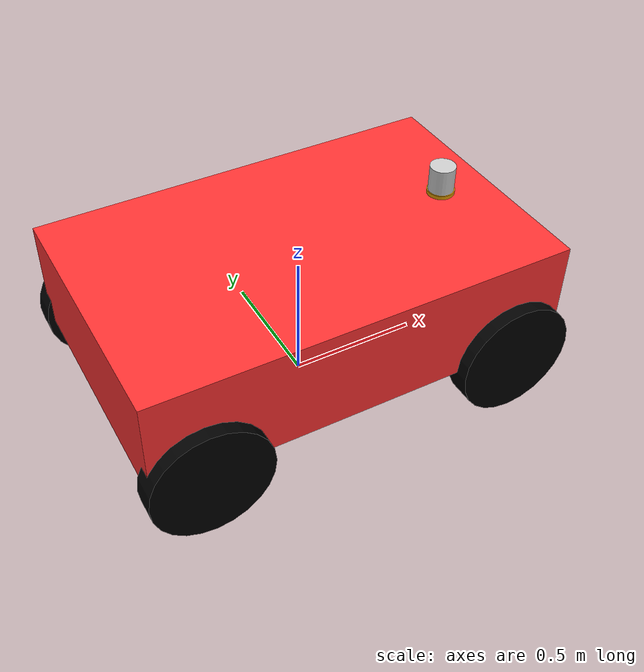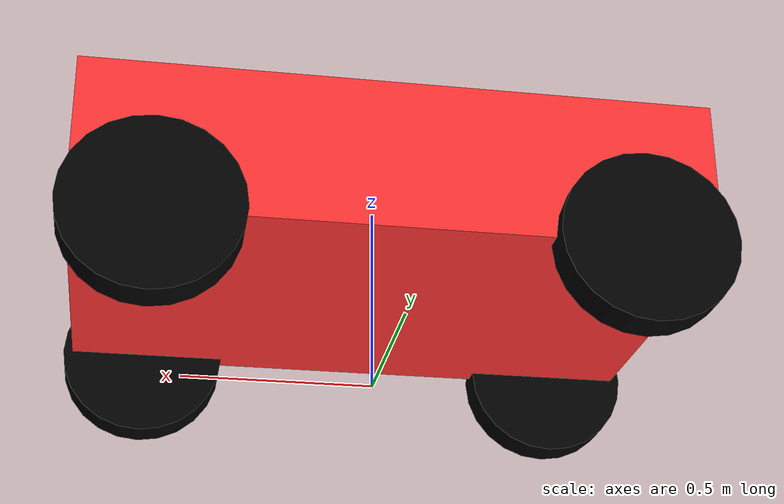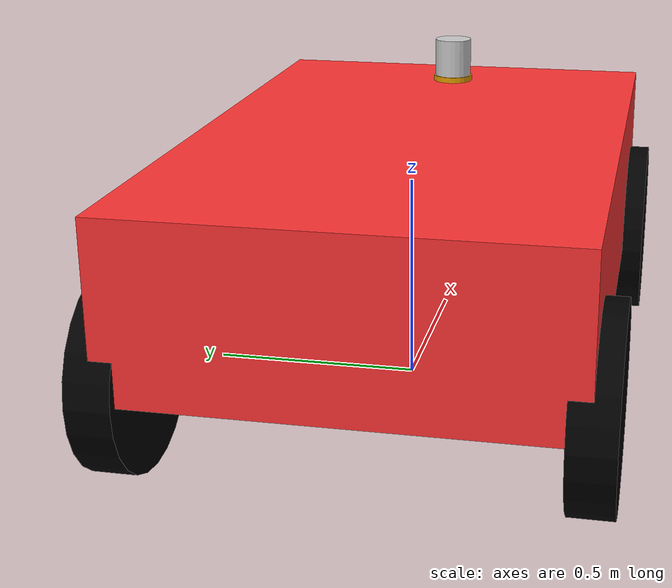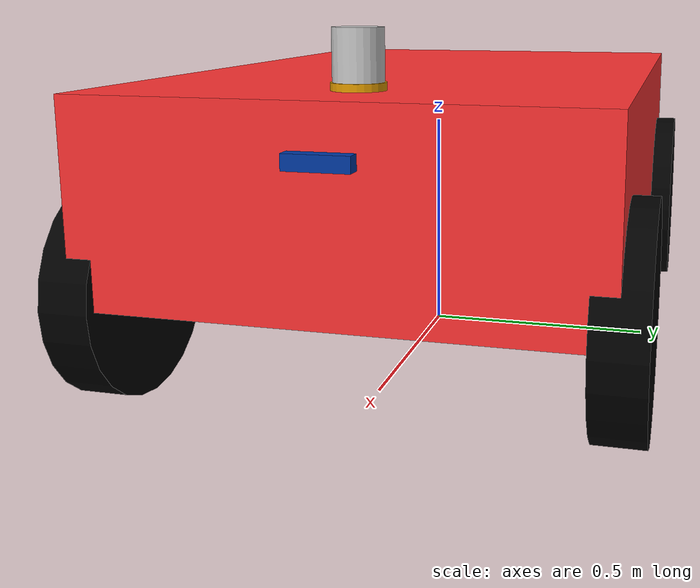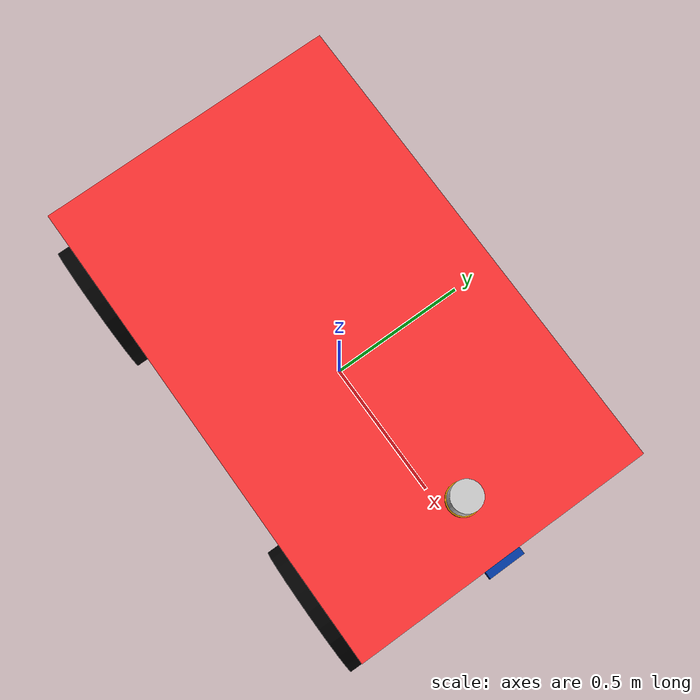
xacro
<?xml version="1.0"?>
<!-- 4 Wheel Robot with front steering and rear drive -->
<robot xmlns:xacro="http://www.ros.org/wiki/xacro" name="delicar_robot">

  <xacro:arg name="prefix" default="" />

  <xacro:arg name="use_sim" default="true" />

  <xacro:include filename="$(find delicar_description)/urdf/robot/delicar_sim_description.urdf.xacro" />
  <xacro:include filename="$(find delicar_description)/urdf/sensors/depth_camera.urdf.xacro" />
  <xacro:include filename="$(find delicar_description)/urdf/sensors/imu.urdf.xacro" />
  <xacro:include filename="$(find delicar_description)/urdf/sensors/laser_3d.urdf.xacro" />
  <xacro:include filename="$(find delicar_description)/urdf/controllers/delicar_controllers.xacro" />
  <xacro:include filename="$(find delicar_description)/urdf/controllers/gazebo_controllers.xacro" />

  <!-- Import delicar description -->
  <xacro:delicar prefix="$(arg prefix)" />

  <!-- Import camera -->
  <xacro:depth_camera prefix="$(arg prefix)" />

  <!-- Import imu -->
  <xacro:imu prefix="$(arg prefix)"/>

  <!-- Import 3d lidar -->
  <xacro:laser_3d
    prefix="$(arg prefix)"
    update_rate="10"
    ray_count="440"
    line_count="16"
    hor_min_angle="-3.14159"
    hor_max_angle="3.14159"
    ver_min_angle="-0.2617"
    ver_max_angle="0.2617"
    min_range="0.3"
    max_range="130.0"
    frame_id="laser_3d"
    topic_name="lidar/points_raw"
  />

  <!-- Import controllers -->
  <xacro:gazebo_ros2_control name="GazeboSystem" prefix="$(arg prefix)" />

</robot>

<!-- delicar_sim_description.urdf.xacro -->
<robot xmlns:xacro="http://www.ros.org/wiki/xacro">

  <xacro:macro name="delicar" params="prefix">

    <!-- Constants for robot dimensions -->
    <xacro:property name="PI" value="3.1415926535897931" />
    <xacro:property name="base_mass" value="50.0" />
    <xacro:property name="base_width" value="1" />
    <xacro:property name="base_length" value="1.6" />
    <xacro:property name="base_height" value="0.4" />
    <xacro:property name="wheelbase" value="1.2" />
    <xacro:property name="wheeltrack" value="1.0" />
    <xacro:property name="wheel_mass" value="5" />
    <xacro:property name="wheel_len" value="0.1" />
    <xacro:property name="wheel_radius" value="0.225" />

    <!-- Base Link -->
    <link name="${prefix}base_link" />

    <!-- Chassis -->
    <link name="${prefix}chassis_link">

      <visual>
        <origin xyz="0 0 0" rpy="0 0 0" />
        <geometry>
          <box size="${base_length} ${base_width} ${base_height}" />
        </geometry>
        <material name="red">
          <color rgba="1.0 0.2 0.2 1.0" />
        </material>
      </visual>

      <inertial>
        <origin xyz="0 0 0" rpy="0 0 0" />
        <mass value="${base_mass}" />
        <inertia
          ixx="${base_mass / 12.0 * (base_width*base_width + base_height*base_height)}"
          ixy="0.0"
          ixz="0.0"
          iyy="${base_mass / 12.0 * (base_width*base_width + base_height*base_height)}"
          iyz="0.0"
          izz="${base_mass / 12.0 * (base_width*base_width + base_height*base_height)}" />
      </inertial>

    </link>

    <!-- Fix color bug in gazebo -->
    <gazebo reference="${prefix}chassis_link">
      <visual>
        <material>
          <ambient>1.0 0.2 0.2 1.0</ambient>
          <diffuse>1.0 0.2 0.2 1.0</diffuse>
          <specular>1.0 1.0 1.0 1.0</specular>
          <emissive>0.2 0.0 0.0 1.0</emissive>
        </material>
      </visual>
    </gazebo>

    <!-- Chassis Joint -->
    <joint name="${prefix}chassis_joint" type="fixed">
      <parent link="${prefix}base_link" />
      <child link="${prefix}chassis_link" />
      <origin xyz="0 0 ${wheel_radius + base_height/2}" rpy="0 0 0" />
    </joint>

    <!-- Rear wheels -->

    <!-- rear left wheel -->
    <link name="${prefix}rear_left_wheel">
      <visual>
        <origin xyz="0 0 0" rpy="0 0 0" />
        <geometry>
          <cylinder length="${wheel_len}" radius="${wheel_radius}" />
        </geometry>
        <material name="black">
          <color rgba="0.0 0.0 0.0 1.0" />
        </material>
      </visual>

      <collision>
        <origin xyz="0 0 0" rpy="0 0 0" />
        <geometry>
          <cylinder length="${wheel_len}" radius="${wheel_radius}" />
        </geometry>
      </collision>

      <inertial>
        <origin xyz="0 0 0" rpy="0 0 0" />
        <mass value="${wheel_mass}" />
        <inertia
          ixx="${wheel_mass / 12.0 * (3 * wheel_radius*wheel_radius + wheel_len*wheel_len)}"
          ixy="0.0"
          ixz="0.0"
          iyy="${wheel_mass / 12.0 * (3 * wheel_radius*wheel_radius + wheel_len*wheel_len)}"
          iyz="0.0"
          izz="${wheel_mass / 2.0 * wheel_radius*wheel_radius}" />
      </inertial>
    </link>

    <joint name="${prefix}rear_left_wheel_joint" type="continuous">
      <parent link="${prefix}chassis_link" />
      <child link="${prefix}rear_left_wheel" />
      <origin xyz="-${wheelbase/2} ${wheeltrack/2} -${base_height/2}" rpy="-1.57 0 0" />
      <axis xyz="0 0 1" />
      <limit effort="1000.0" velocity="100" />
    </joint>

    <gazebo reference="${prefix}rear_left_wheel">
      <visual>
        <material>
          <ambient>0.0 0.0 0.0 1.0</ambient>
          <diffuse>0.0 0.0 0.0 1.0</diffuse>
          <specular>0.5 0.5 0.5 1.0</specular>
          <emissive>0.0 0.0 0.0 1.0</emissive>
        </material>
      </visual>
    </gazebo>

    <!-- rear right wheel -->

    <link name="${prefix}rear_right_wheel">

      <visual>
        <origin xyz="0 0 0" rpy="0 0 0" />
        <geometry>
          <cylinder length="${wheel_len}" radius="${wheel_radius}" />
        </geometry>
        <material name="black">
          <color rgba="0.0 0.0 0.0 1.0" />
        </material>
      </visual>

      <collision>
        <origin xyz="0 0 0" rpy="0 0 0" />
        <geometry>
          <cylinder length="${wheel_len}" radius="${wheel_radius}" />
        </geometry>
      </collision>

      <inertial>
        <origin xyz="0 0 0" rpy="0 0 0" />
        <mass value="${wheel_mass}" />
        <inertia
          ixx="${wheel_mass / 12.0 * (3 * wheel_radius*wheel_radius + wheel_len*wheel_len)}"
          ixy="0.0"
          ixz="0.0"
          iyy="${wheel_mass / 12.0 * (3 * wheel_radius*wheel_radius + wheel_len*wheel_len)}"
          iyz="0.0"
          izz="${wheel_mass / 2.0 * wheel_radius*wheel_radius}" />
      </inertial>

    </link>

    <joint name="${prefix}rear_right_wheel_joint" type="continuous">
      <parent link="${prefix}chassis_link" />
      <child link="${prefix}rear_right_wheel" />
      <origin xyz="-${wheelbase/2} -${wheeltrack/2} -${base_height/2}" rpy="-1.57 0 0" />
      <axis xyz="0 0 1" />
      <limit effort="1000.0" velocity="100" />
    </joint>

    <gazebo reference="${prefix}rear_right_wheel">
      <visual>
        <material>
          <ambient>0.0 0.0 0.0 1.0</ambient>
          <diffuse>0.0 0.0 0.0 1.0</diffuse>
          <specular>0.5 0.5 0.5 1.0</specular>
          <emissive>0.0 0.0 0.0 1.0</emissive>
        </material>
      </visual>
    </gazebo>

    <!-- steering links-->

    <!-- left sterring link-->

    <link name="${prefix}left_wheel_steering">
      <inertial>
        <mass value="0.1" />
        <inertia ixx="0.001" ixy="0.0" ixz="0.0" iyy="0.001" iyz="0.0" izz="0.001" />
      </inertial>
    </link>

    <!-- left sterring joint-->

    <joint name="${prefix}left_wheel_steering_joint" type="revolute">
      <parent link="${prefix}chassis_link" />
      <child link="${prefix}left_wheel_steering" />
      <origin xyz="${wheelbase/2} -${wheeltrack/2} -${base_height/2}" rpy="${PI/2} 0 0" />
      <axis xyz="0 1 0" />
      <limit effort="1000.0" lower="-1.0471975512" upper="1.0471975512" velocity="30" />
    </joint>

    <!-- right sterring link-->

    <link name="${prefix}right_wheel_steering">
      <inertial>
        <mass value="0.1" />
        <inertia ixx="0.001" ixy="0.0" ixz="0.0" iyy="0.001" iyz="0.0" izz="0.001" />
      </inertial>
    </link>

    <!-- right sterring joint-->

    <joint name="${prefix}right_wheel_steering_joint" type="revolute">
      <parent link="${prefix}chassis_link" />
      <child link="${prefix}right_wheel_steering" />
      <origin xyz="${wheelbase/2} ${wheeltrack/2} -${base_height/2}" rpy="${PI/2} 0 0" />
      <axis xyz="0 1 0" />
      <limit effort="1000.0" lower="-1.0471975512" upper="1.0471975512" velocity="30" />
    </joint>

    <!-- front wheels -->

    <!-- front left steering -->

    <link name="${prefix}front_left_wheel">
      <collision>
        <origin xyz="0 0 0" rpy="0 0 0" />
        <geometry>
          <cylinder length="${wheel_len}" radius="${wheel_radius}" />
        </geometry>
      </collision>

      <visual>
        <origin xyz="0 0 0" rpy="0 0 0" />
        <geometry>
          <cylinder length="${wheel_len}" radius="${wheel_radius}" />
        </geometry>
        <material name="black" />
      </visual>

      <inertial>
        <origin xyz="0 0 0" rpy="0 0 0" />
        <mass value="${wheel_mass}" />
        <inertia
          ixx="${wheel_mass / 12.0 * (3 * wheel_radius*wheel_radius + wheel_len*wheel_len)}"
          ixy="0.0"
          ixz="0.0"
          iyy="${wheel_mass / 12.0 * (3 * wheel_radius*wheel_radius + wheel_len*wheel_len)}"
          iyz="0.0"
          izz="${wheel_mass / 2.0 * wheel_radius*wheel_radius}" />
      </inertial>

    </link>

    <joint name="${prefix}front_left_wheel_joint" type="continuous">
      <parent link="${prefix}left_wheel_steering" />
      <child link="${prefix}front_left_wheel" />
      <origin xyz="0 0 0" rpy="0 0 0" />
      <axis xyz="0 0 1" />
    </joint>

    <!-- front right wheel -->

    <link name="${prefix}front_right_wheel">

      <collision>
        <origin xyz="0 0 0" rpy="0 0 0" />
        <geometry>
          <cylinder length="${wheel_len}" radius="${wheel_radius}" />
        </geometry>
      </collision>

      <visual>
        <origin xyz="0 0 0" rpy="0 0 0" />
        <geometry>
          <cylinder length="${wheel_len}" radius="${wheel_radius}" />
        </geometry>
        <material name="black" />
      </visual>

      <inertial>
        <origin xyz="0 0 0" rpy="0 0 0" />
        <mass value="${wheel_mass}" />
        <inertia
          ixx="${wheel_mass / 12.0 * (3 * wheel_radius*wheel_radius + wheel_len*wheel_len)}"
          ixy="0.0"
          ixz="0.0"
          iyy="${wheel_mass / 12.0 * (3 * wheel_radius*wheel_radius + wheel_len*wheel_len)}"
          iyz="0.0"
          izz="${wheel_mass / 2.0 * wheel_radius*wheel_radius}" />
      </inertial>
    </link>

    <joint name="${prefix}front_right_wheel_joint" type="continuous">
      <parent link="${prefix}right_wheel_steering" />
      <child link="${prefix}front_right_wheel" />
      <origin xyz="0 0 0" rpy="0 0 0" />
      <axis xyz="0 0 1" />
    </joint>

    <!-- lidar base -->

    <link name="${prefix}lidar_base">

      <visual>
        <origin xyz="0 0 0" rpy="0 0 0" />
        <geometry>
          <cylinder length="0.03" radius="0.0525" />
        </geometry>
      </visual>

      <inertial>
        <origin xyz="0 0 0" rpy="0 0 0" />
        <mass value="${wheel_mass}" />
        <inertia
          ixx="0.01"
          ixy="0.0"
          ixz="0.0"
          iyy="0.01"
          iyz="0.0"
          izz="0.01" />
      </inertial>
    </link>

    <joint name="${prefix}lidar_base_joint" type="fixed">
      <parent link="${prefix}chassis_link" />
      <child link="${prefix}lidar_base" />
      <origin xyz="0.6 0 0.2" rpy="0 0 0" />
    </joint>

  </xacro:macro>

</robot>

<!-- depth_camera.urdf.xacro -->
<robot xmlns:xacro="http://ros.org/wiki/xacro">
  <xacro:property name="M_PI" value="3.1415926535897931" />
  <xacro:macro name="depth_camera" params="prefix">
    <link name="${prefix}depth_camera_link">
      <visual>
        <origin xyz="0 0 0" rpy="0 0 0" />
        <geometry>
          <box size="0.030 0.124 0.030" />
        </geometry>
        <material name="blue">
          <color rgba="0.003 0.223 0.639 1.0" />
        </material>
      </visual>

      <collision>
        <origin xyz="0 0 0" rpy="0 0 0" />
        <geometry>
          <box size="0.030 0.124 0.030" />
        </geometry>
      </collision>

      <inertial>
        <origin xyz="0 0 0" rpy="0 0 0" />
        <mass value="0.135" />
        <inertia ixx="${(1/12) * 0.135 * ((0.124  * 0.124)  + (0.030 * 0.030))}" ixy="0.0" ixz="0.0"
          iyy="${(1/12) * 0.135 * ((0.030 * 0.030) + (0.030 * 0.030))}" iyz="0.0"
          izz="${(1/12) * 0.135 * ((0.030 * 0.030) + (0.124  * 0.124))}" />
      </inertial>
    </link>

    <joint name="${prefix}depth_camera_joint" type="fixed">
        <origin
        xyz="0.815 0 0.525"
        rpy="0 0 0" />
        <parent link="${prefix}base_link" />
        <child link="${prefix}depth_camera_link" />
        <axis xyz="0 0 0" />
    </joint>

    <gazebo reference="${prefix}depth_camera_link">
      <visual>
        <material>
          <ambient>0.051 0.047 0.416 1.0</ambient>
          <diffuse>0.051 0.047 0.416 1.0</diffuse>
          <specular>0.051 0.047 0.416 1.0</specular>
          <emissive>0.051 0.047 0.416 1.0</emissive>
        </material>
      </visual>
    </gazebo>

    <link name="${prefix}depth_camera_optical_link"></link>

    <joint name="${prefix}depth_camera_optical_joint" type="fixed">
      <parent link="${prefix}depth_camera_link" />
      <child link="${prefix}depth_camera_optical_link" />
      <origin xyz="0 0 0" rpy="${-pi/2} 0 ${-pi/2}" />
    </joint>

    <gazebo reference="${prefix}depth_camera_link">
      <sensor name="camera" type="depth">
        <always_on>true</always_on>
        <update_rate>60.0</update_rate>
        <camera name="camera">
          <horizontal_fov>1.50098</horizontal_fov>
          <image>
            <width>640</width>
            <height>480</height>
            <format>R8G8B8</format>
          </image>
        </camera>
        <plugin name="depth_camera_controller" filename="libgazebo_ros_camera.so">
          <ros>
            <remapping>/camera/camera_info:=/camera/color/camera_info</remapping>
            <remapping>/camera/image_raw:=/camera/color/image_raw</remapping>
            <remapping>/camera/points:=/camera/depth/color/points</remapping>
            <remapping>/camera/depth/image_raw:=/camera/depth/image_rect_raw</remapping>
            <qos>
              <topic name="/camera/depth/color/points">
                <publisher>
                  <reliability>best_effort</reliability>
                </publisher>
              </topic>
            </qos>
          </ros>
          <min_depth>0.015</min_depth>
          <max_depth>5.0</max_depth>
          <hack_baseline>0.07</hack_baseline>
          <frame_name>${prefix}depth_camera_optical_link</frame_name>
          <distortion_k1>0.00000001</distortion_k1>
          <distortion_k2>0.00000001</distortion_k2>
          <distortion_k3>0.00000001</distortion_k3>
          <distortion_t1>0.00000001</distortion_t1>
          <distortion_t2>0.00000001</distortion_t2>
        </plugin>
      </sensor>

    </gazebo>
  </xacro:macro>
</robot>

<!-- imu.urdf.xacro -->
<robot xmlns:xacro="http://ros.org/wiki/xacro">
  <xacro:macro name="imu" params="prefix">
    <link name="imu_link" />

    <joint name="${prefix}imu_to_base_link" type="fixed">
      <parent link="${prefix}base_link" />
      <child link="${prefix}imu_link" />
      <origin xyz="0.93 0 1.475" rpy="0 0.261 0" />
    </joint>

    <gazebo reference="${prefix}imu_link">
      <gravity>true</gravity>
      <sensor name="${prefix}imu_sensor" type="imu">
        <always_on>true</always_on>
        <update_rate>100</update_rate>
        <visualize>false</visualize>
        <topic>__default_topic__</topic>
        <plugin filename="libgazebo_ros_imu_sensor.so" name="imu_plugin">
          <ros>
            <remapping>~/out:=imu/data</remapping>
          </ros>
          <topicName>imu/data</topicName>
          <bodyName>imu_link</bodyName>
          <updateRateHZ>100.0</updateRateHZ>
          <xyzOffset>0 0 0</xyzOffset>
          <rpyOffset>0 0 0</rpyOffset>
          <frameName>imu_link</frameName>
          <initialOrientationAsReference>false</initialOrientationAsReference>
        </plugin>
        <imu>
          <angular_velocity>
            <x>
              <noise type="gaussian">
                <mean>0.0</mean>
                <stddev>2e-4</stddev>
                <bias_mean>0.0000075</bias_mean>
                <bias_stddev>0.0000008</bias_stddev>
              </noise>
            </x>
            <y>
              <noise type="gaussian">
                <mean>0.0</mean>
                <stddev>2e-4</stddev>
                <bias_mean>0.0000075</bias_mean>
                <bias_stddev>0.0000008</bias_stddev>
              </noise>
            </y>
            <z>
              <noise type="gaussian">
                <mean>0.0</mean>
                <stddev>2e-4</stddev>
                <bias_mean>0.0000075</bias_mean>
                <bias_stddev>0.0000008</bias_stddev>
              </noise>
            </z>
          </angular_velocity>
          <linear_acceleration>
            <x>
              <noise type="gaussian">
                <mean>0.0</mean>
                <stddev>1.7e-2</stddev>
                <bias_mean>0.1</bias_mean>
                <bias_stddev>0.001</bias_stddev>
              </noise>
            </x>
            <y>
              <noise type="gaussian">
                <mean>0.0</mean>
                <stddev>1.7e-2</stddev>
                <bias_mean>0.1</bias_mean>
                <bias_stddev>0.001</bias_stddev>
              </noise>
            </y>
            <z>
              <noise type="gaussian">
                <mean>0.0</mean>
                <stddev>1.7e-2</stddev>
                <bias_mean>0.1</bias_mean>
                <bias_stddev>0.001</bias_stddev>
              </noise>
            </z>
          </linear_acceleration>
        </imu>
        <pose>0 0 0 0 0 0</pose>
      </sensor>
    </gazebo>
  </xacro:macro>
</robot>

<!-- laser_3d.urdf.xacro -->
<robot xmlns:xacro="http://ros.org/wiki/xacro">
  <xacro:property name="M_PI" value="3.1415926535897931" />
  <xacro:macro name="laser_3d"
    params="prefix update_rate ray_count line_count hor_min_angle hor_max_angle ver_min_angle ver_max_angle min_range max_range frame_id topic_name">
    <link name="${frame_id}">
      <visual>
        <origin xyz="0 0 0" rpy="0 0 0" />
        <geometry>
          <cylinder radius="0.04875" length="0.1" />
        </geometry>
        <material name="gray">
          <color rgba="0.8 0.8 0.8 1.0" />
        </material>
      </visual>
      <collision>
        <origin xyz="0 0 0" rpy="0 0 0" />
        <geometry>
          <cylinder radius="0.04875" length="0.1" />
        </geometry>
      </collision>
      <inertial>
        <origin xyz="0 0 0" rpy="0 0 0" />
        <mass value="0.1" />
        <inertia ixx="${(2/5) * 0.1 * (0.04875 * 0.04875)}" ixy="0" ixz="0"
          iyy="${(2/5) * 0.1 * (0.04875 * 0.04875)}" iyz="0"
          izz="${(2/5) * 0.1 * (0.04875 * 0.04875)}" />
      </inertial>
    </link>

    <joint name="${frame_id}_to_base_link" type="fixed">
      <parent link="${prefix}base_link" />
      <child link="${frame_id}" />
      <origin xyz="0.6 0 0.69" rpy="0 0 0" />
    </joint>

    <gazebo reference="${frame_id}">
      <visual>
        <material>
          <ambient>0.8 0.8 0.8 1.0</ambient>
          <diffuse>0.8 0.8 0.8 1.0</diffuse>
          <specular>0.99 0.99 0.99 1.0</specular>
          <emissive>0.0 0.0 0.0 0.0</emissive>
        </material>
      </visual>
    </gazebo>

    <gazebo reference="${frame_id}">
      <sensor name="${frame_id}_lidar" type="ray">
        <always_on>true</always_on>
        <update_rate>${update_rate}</update_rate>
        <pose>0 0 0 0 0 0</pose>
        <visualize>false</visualize>
        <ray>
          <scan>
            <horizontal>
              <samples>${ray_count}</samples>
              <resolution>1</resolution>
              <min_angle>${hor_min_angle}</min_angle>
              <max_angle>${hor_max_angle}</max_angle>
            </horizontal>
            <vertical>
              <samples>${line_count}</samples>
              <resolution>1</resolution>
              <min_angle>${ver_min_angle}</min_angle>
              <max_angle>${ver_max_angle}</max_angle>
            </vertical>
          </scan>
          <range>
            <min>${min_range}</min>
            <max>${max_range}</max>
            <resolution>0.001</resolution>
          </range>
        </ray>
        <plugin name="${frame_id}_lidar_controller" filename="libgazebo_ros_velodyne_laser.so">
          <ros>
            <remapping>~/out:=${topic_name}</remapping>
            <qos>
              <topic name="${topic_name}">
                <publisher>
                  <reliability>reliable</reliability>
                </publisher>
              </topic>
            </qos>
          </ros>
          <topicName>${topic_name}</topicName>
          <frameName>${frame_id}</frameName>
          <min_range>${min_range}</min_range>
          <max_range>${max_range}</max_range>
          <gaussianNoise>0.008</gaussianNoise>
          <updateRate>${update_rate}</updateRate>
          <organize_cloud>false</organize_cloud>
          <min_intensity>0.0</min_intensity>
        </plugin>
      </sensor>
    </gazebo>

  </xacro:macro>
</robot>
